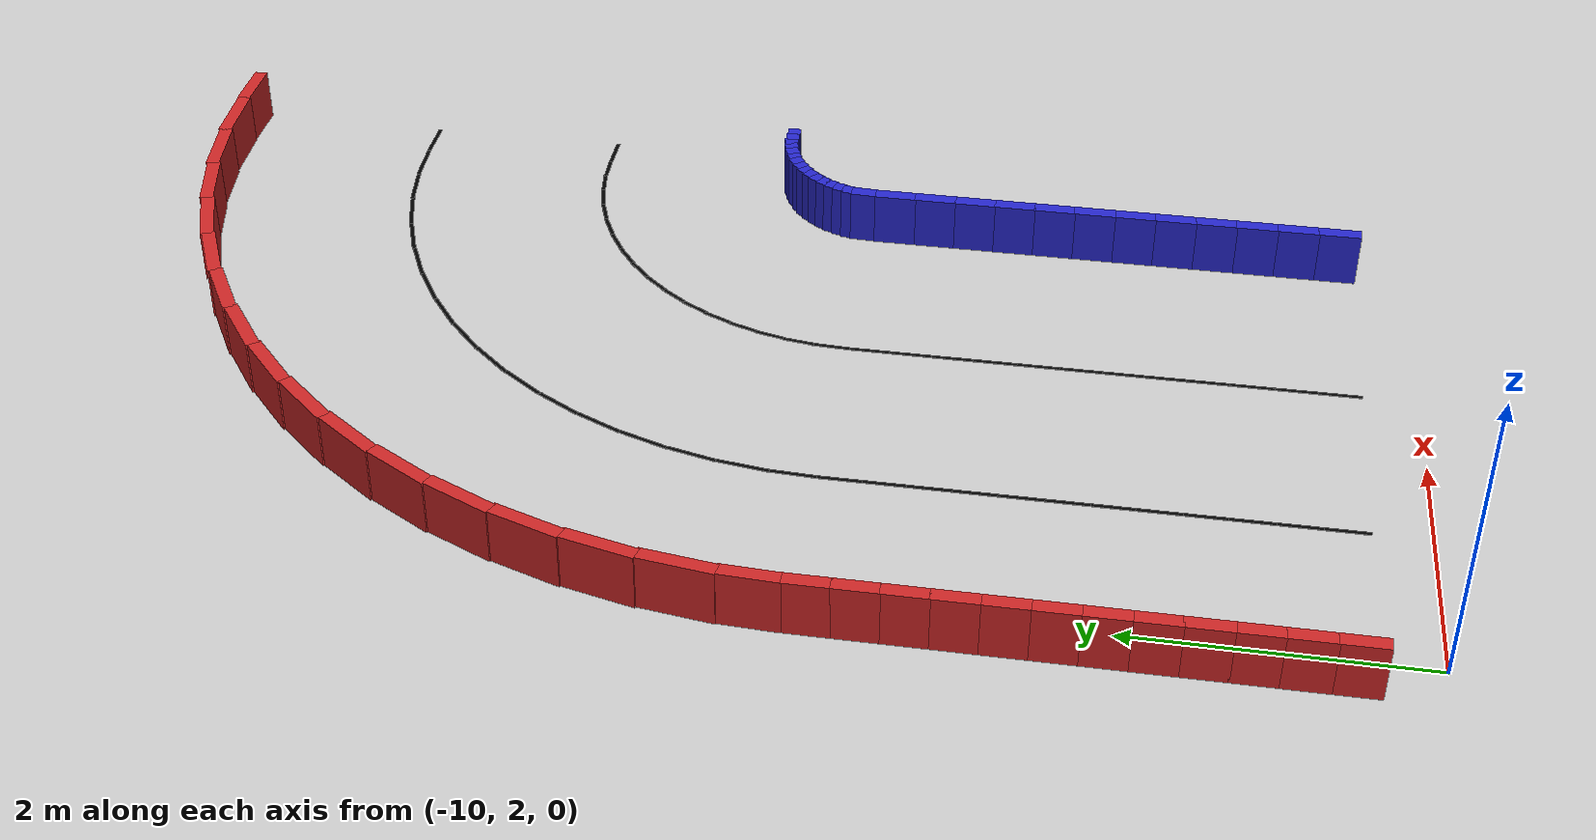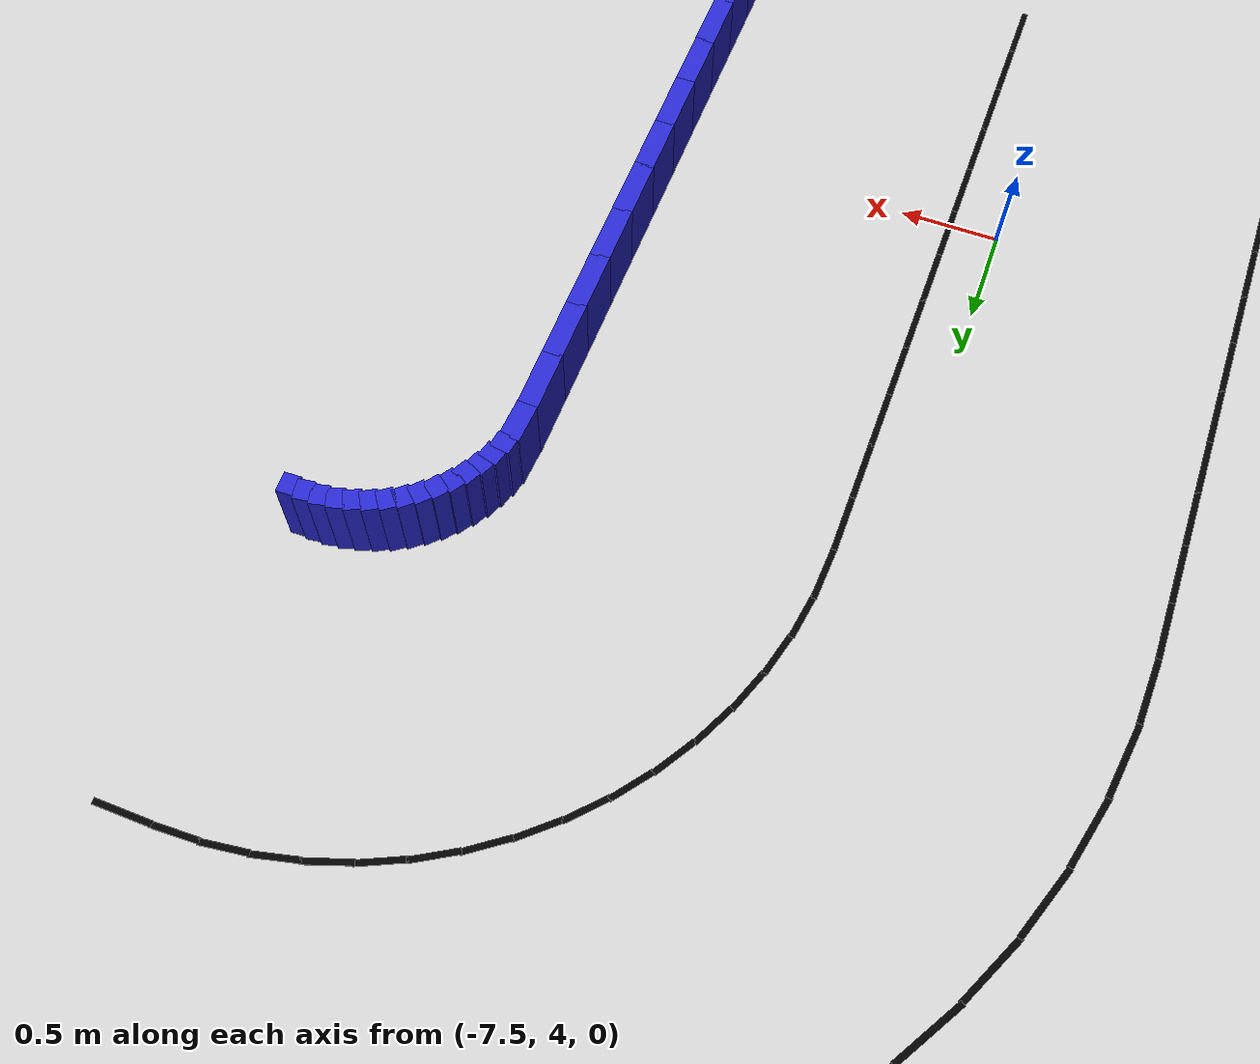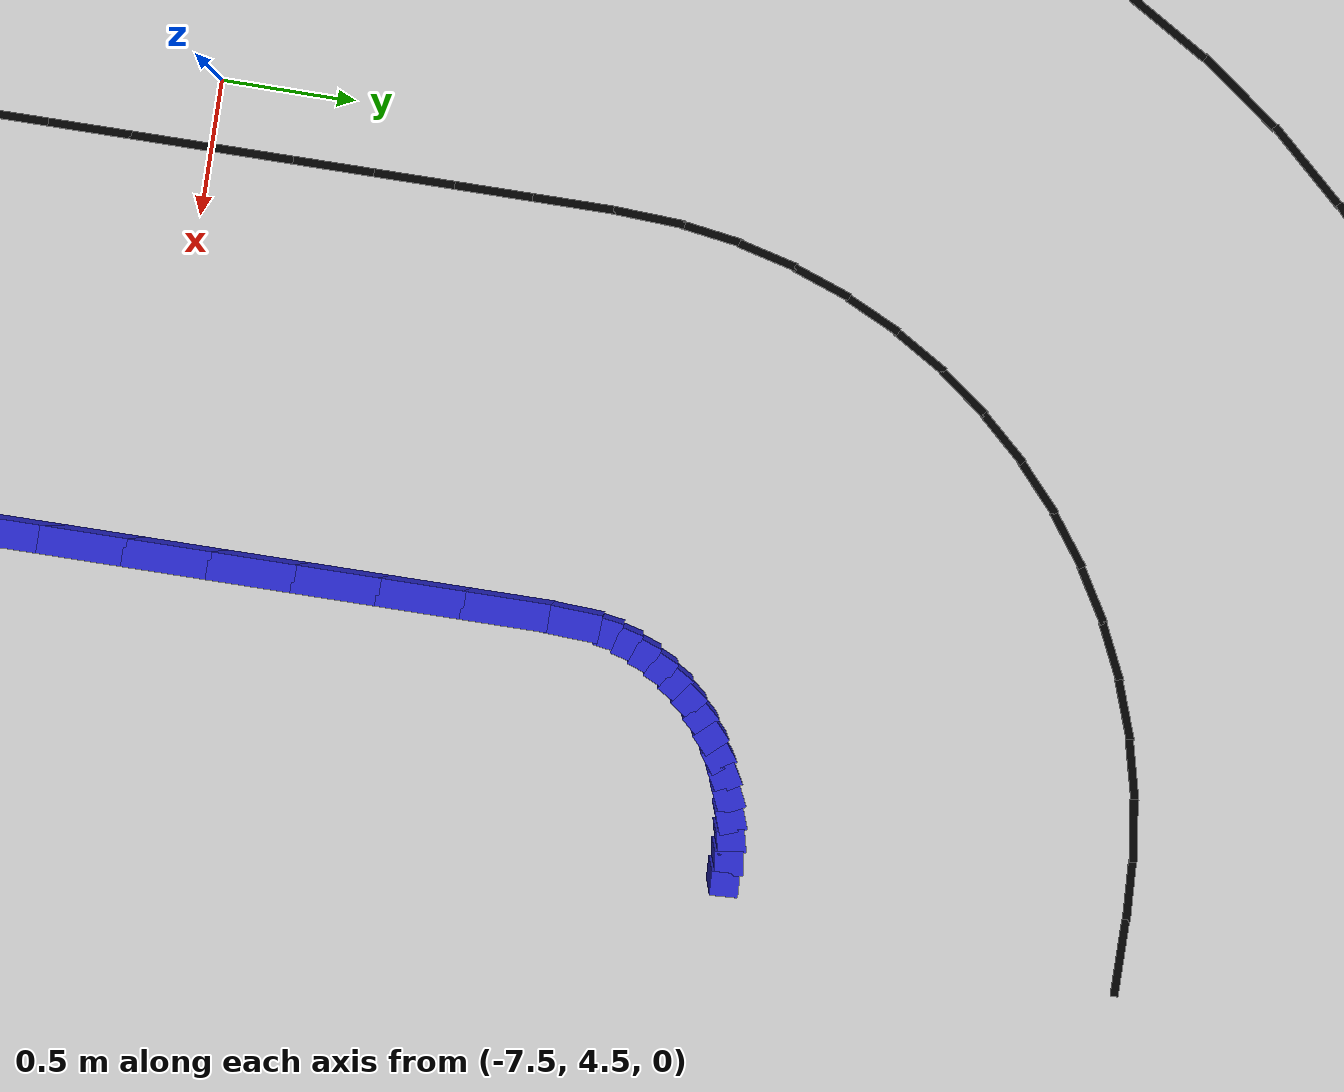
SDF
<sdf version="1.6">
 <world name="3lane_track">
  <include><uri>model://ground_plane</uri></include>
  <include><uri>model://sun</uri></include>
  <model name="iw_280">
   <static>true</static>
   <pose>-4.9268 6.7563 0.200 0 0 -3.0925</pose>
   <link name="l">
    <collision name="c"><geometry><box><size>0.0847 0.1 0.4</size></box></geometry></collision>
    <visual name="v">
     <geometry><box><size>0.0847 0.1 0.4</size></box></geometry>
     <material><ambient>0.15 0.15 0.8 1</ambient><diffuse>0.15 0.15 0.8 1</diffuse></material>
    </visual>
   </link>
  </model>
  <model name="iw_281">
   <static>true</static>
   <pose>-5.0012 6.7598 0.200 0 0 -2.9943</pose>
   <link name="l">
    <collision name="c"><geometry><box><size>0.0847 0.1 0.4</size></box></geometry></collision>
    <visual name="v">
     <geometry><box><size>0.0847 0.1 0.4</size></box></geometry>
     <material><ambient>0.15 0.15 0.8 1</ambient><diffuse>0.15 0.15 0.8 1</diffuse></material>
    </visual>
   </link>
  </model>
  <model name="iw_282">
   <static>true</static>
   <pose>-5.0757 6.7561 0.200 0 0 -2.8962</pose>
   <link name="l">
    <collision name="c"><geometry><box><size>0.0847 0.1 0.4</size></box></geometry></collision>
    <visual name="v">
     <geometry><box><size>0.0847 0.1 0.4</size></box></geometry>
     <material><ambient>0.15 0.15 0.8 1</ambient><diffuse>0.15 0.15 0.8 1</diffuse></material>
    </visual>
   </link>
  </model>
  <model name="iw_283">
   <static>true</static>
   <pose>-5.1495 6.7450 0.200 0 0 -2.7980</pose>
   <link name="l">
    <collision name="c"><geometry><box><size>0.0847 0.1 0.4</size></box></geometry></collision>
    <visual name="v">
     <geometry><box><size>0.0847 0.1 0.4</size></box></geometry>
     <material><ambient>0.15 0.15 0.8 1</ambient><diffuse>0.15 0.15 0.8 1</diffuse></material>
    </visual>
   </link>
  </model>
  <model name="iw_284">
   <static>true</static>
   <pose>-5.2218 6.7268 0.200 0 0 -2.6998</pose>
   <link name="l">
    <collision name="c"><geometry><box><size>0.0847 0.1 0.4</size></box></geometry></collision>
    <visual name="v">
     <geometry><box><size>0.0847 0.1 0.4</size></box></geometry>
     <material><ambient>0.15 0.15 0.8 1</ambient><diffuse>0.15 0.15 0.8 1</diffuse></material>
    </visual>
   </link>
  </model>
  <model name="iw_285">
   <static>true</static>
   <pose>-5.2919 6.7015 0.200 0 0 -2.6016</pose>
   <link name="l">
    <collision name="c"><geometry><box><size>0.0847 0.1 0.4</size></box></geometry></collision>
    <visual name="v">
     <geometry><box><size>0.0847 0.1 0.4</size></box></geometry>
     <material><ambient>0.15 0.15 0.8 1</ambient><diffuse>0.15 0.15 0.8 1</diffuse></material>
    </visual>
   </link>
  </model>
  <model name="iw_286">
   <static>true</static>
   <pose>-5.3593 6.6695 0.200 0 0 -2.5035</pose>
   <link name="l">
    <collision name="c"><geometry><box><size>0.0847 0.1 0.4</size></box></geometry></collision>
    <visual name="v">
     <geometry><box><size>0.0847 0.1 0.4</size></box></geometry>
     <material><ambient>0.15 0.15 0.8 1</ambient><diffuse>0.15 0.15 0.8 1</diffuse></material>
    </visual>
   </link>
  </model>
  <model name="iw_287">
   <static>true</static>
   <pose>-5.4232 6.6311 0.200 0 0 -2.4053</pose>
   <link name="l">
    <collision name="c"><geometry><box><size>0.0847 0.1 0.4</size></box></geometry></collision>
    <visual name="v">
     <geometry><box><size>0.0847 0.1 0.4</size></box></geometry>
     <material><ambient>0.15 0.15 0.8 1</ambient><diffuse>0.15 0.15 0.8 1</diffuse></material>
    </visual>
   </link>
  </model>
  <model name="iw_288">
   <static>true</static>
   <pose>-5.4830 6.5866 0.200 0 0 -2.3071</pose>
   <link name="l">
    <collision name="c"><geometry><box><size>0.0847 0.1 0.4</size></box></geometry></collision>
    <visual name="v">
     <geometry><box><size>0.0847 0.1 0.4</size></box></geometry>
     <material><ambient>0.15 0.15 0.8 1</ambient><diffuse>0.15 0.15 0.8 1</diffuse></material>
    </visual>
   </link>
  </model>
  <model name="iw_289">
   <static>true</static>
   <pose>-5.5382 6.5364 0.200 0 0 -2.2089</pose>
   <link name="l">
    <collision name="c"><geometry><box><size>0.0847 0.1 0.4</size></box></geometry></collision>
    <visual name="v">
     <geometry><box><size>0.0847 0.1 0.4</size></box></geometry>
     <material><ambient>0.15 0.15 0.8 1</ambient><diffuse>0.15 0.15 0.8 1</diffuse></material>
    </visual>
   </link>
  </model>
  <model name="iw_290">
   <static>true</static>
   <pose>-5.5882 6.4811 0.200 0 0 -2.1108</pose>
   <link name="l">
    <collision name="c"><geometry><box><size>0.0847 0.1 0.4</size></box></geometry></collision>
    <visual name="v">
     <geometry><box><size>0.0847 0.1 0.4</size></box></geometry>
     <material><ambient>0.15 0.15 0.8 1</ambient><diffuse>0.15 0.15 0.8 1</diffuse></material>
    </visual>
   </link>
  </model>
  <model name="iw_291">
   <static>true</static>
   <pose>-5.6325 6.4211 0.200 0 0 -2.0126</pose>
   <link name="l">
    <collision name="c"><geometry><box><size>0.0847 0.1 0.4</size></box></geometry></collision>
    <visual name="v">
     <geometry><box><size>0.0847 0.1 0.4</size></box></geometry>
     <material><ambient>0.15 0.15 0.8 1</ambient><diffuse>0.15 0.15 0.8 1</diffuse></material>
    </visual>
   </link>
  </model>
  <model name="iw_292">
   <static>true</static>
   <pose>-5.6707 6.3571 0.200 0 0 -1.9144</pose>
   <link name="l">
    <collision name="c"><geometry><box><size>0.0847 0.1 0.4</size></box></geometry></collision>
    <visual name="v">
     <geometry><box><size>0.0847 0.1 0.4</size></box></geometry>
     <material><ambient>0.15 0.15 0.8 1</ambient><diffuse>0.15 0.15 0.8 1</diffuse></material>
    </visual>
   </link>
  </model>
  <model name="iw_293">
   <static>true</static>
   <pose>-5.7025 6.2896 0.200 0 0 -1.8162</pose>
   <link name="l">
    <collision name="c"><geometry><box><size>0.0847 0.1 0.4</size></box></geometry></collision>
    <visual name="v">
     <geometry><box><size>0.0847 0.1 0.4</size></box></geometry>
     <material><ambient>0.15 0.15 0.8 1</ambient><diffuse>0.15 0.15 0.8 1</diffuse></material>
    </visual>
   </link>
  </model>
  <model name="iw_294">
   <static>true</static>
   <pose>-5.7275 6.2194 0.200 0 0 -1.7181</pose>
   <link name="l">
    <collision name="c"><geometry><box><size>0.0847 0.1 0.4</size></box></geometry></collision>
    <visual name="v">
     <geometry><box><size>0.0847 0.1 0.4</size></box></geometry>
     <material><ambient>0.15 0.15 0.8 1</ambient><diffuse>0.15 0.15 0.8 1</diffuse></material>
    </visual>
   </link>
  </model>
  <model name="iw_295">
   <static>true</static>
   <pose>-5.7441 6.0918 0.200 0 0 -1.6199</pose>
   <link name="l">
    <collision name="c"><geometry><box><size>0.1940 0.1 0.4</size></box></geometry></collision>
    <visual name="v">
     <geometry><box><size>0.1940 0.1 0.4</size></box></geometry>
     <material><ambient>0.15 0.15 0.8 1</ambient><diffuse>0.15 0.15 0.8 1</diffuse></material>
    </visual>
   </link>
  </model>
  <model name="iw_296">
   <static>true</static>
   <pose>-5.7500 5.8500 0.200 0 0 -1.5708</pose>
   <link name="l">
    <collision name="c"><geometry><box><size>0.3100 0.1 0.4</size></box></geometry></collision>
    <visual name="v">
     <geometry><box><size>0.3100 0.1 0.4</size></box></geometry>
     <material><ambient>0.15 0.15 0.8 1</ambient><diffuse>0.15 0.15 0.8 1</diffuse></material>
    </visual>
   </link>
  </model>
  <model name="iw_297">
   <static>true</static>
   <pose>-5.7500 5.5500 0.200 0 0 -1.5708</pose>
   <link name="l">
    <collision name="c"><geometry><box><size>0.3100 0.1 0.4</size></box></geometry></collision>
    <visual name="v">
     <geometry><box><size>0.3100 0.1 0.4</size></box></geometry>
     <material><ambient>0.15 0.15 0.8 1</ambient><diffuse>0.15 0.15 0.8 1</diffuse></material>
    </visual>
   </link>
  </model>
  <model name="iw_298">
   <static>true</static>
   <pose>-5.7500 5.2500 0.200 0 0 -1.5708</pose>
   <link name="l">
    <collision name="c"><geometry><box><size>0.3100 0.1 0.4</size></box></geometry></collision>
    <visual name="v">
     <geometry><box><size>0.3100 0.1 0.4</size></box></geometry>
     <material><ambient>0.15 0.15 0.8 1</ambient><diffuse>0.15 0.15 0.8 1</diffuse></material>
    </visual>
   </link>
  </model>
  <model name="iw_299">
   <static>true</static>
   <pose>-5.7500 4.9500 0.200 0 0 -1.5708</pose>
   <link name="l">
    <collision name="c"><geometry><box><size>0.3100 0.1 0.4</size></box></geometry></collision>
    <visual name="v">
     <geometry><box><size>0.3100 0.1 0.4</size></box></geometry>
     <material><ambient>0.15 0.15 0.8 1</ambient><diffuse>0.15 0.15 0.8 1</diffuse></material>
    </visual>
   </link>
  </model>
  <model name="iw_300">
   <static>true</static>
   <pose>-5.7500 4.6500 0.200 0 0 -1.5708</pose>
   <link name="l">
    <collision name="c"><geometry><box><size>0.3100 0.1 0.4</size></box></geometry></collision>
    <visual name="v">
     <geometry><box><size>0.3100 0.1 0.4</size></box></geometry>
     <material><ambient>0.15 0.15 0.8 1</ambient><diffuse>0.15 0.15 0.8 1</diffuse></material>
    </visual>
   </link>
  </model>
  <model name="iw_301">
   <static>true</static>
   <pose>-5.7500 4.3500 0.200 0 0 -1.5708</pose>
   <link name="l">
    <collision name="c"><geometry><box><size>0.3100 0.1 0.4</size></box></geometry></collision>
    <visual name="v">
     <geometry><box><size>0.3100 0.1 0.4</size></box></geometry>
     <material><ambient>0.15 0.15 0.8 1</ambient><diffuse>0.15 0.15 0.8 1</diffuse></material>
    </visual>
   </link>
  </model>
  <model name="iw_302">
   <static>true</static>
   <pose>-5.7500 4.0500 0.200 0 0 -1.5708</pose>
   <link name="l">
    <collision name="c"><geometry><box><size>0.3100 0.1 0.4</size></box></geometry></collision>
    <visual name="v">
     <geometry><box><size>0.3100 0.1 0.4</size></box></geometry>
     <material><ambient>0.15 0.15 0.8 1</ambient><diffuse>0.15 0.15 0.8 1</diffuse></material>
    </visual>
   </link>
  </model>
  <model name="iw_303">
   <static>true</static>
   <pose>-5.7500 3.7500 0.200 0 0 -1.5708</pose>
   <link name="l">
    <collision name="c"><geometry><box><size>0.3100 0.1 0.4</size></box></geometry></collision>
    <visual name="v">
     <geometry><box><size>0.3100 0.1 0.4</size></box></geometry>
     <material><ambient>0.15 0.15 0.8 1</ambient><diffuse>0.15 0.15 0.8 1</diffuse></material>
    </visual>
   </link>
  </model>
  <model name="iw_304">
   <static>true</static>
   <pose>-5.7500 3.4500 0.200 0 0 -1.5708</pose>
   <link name="l">
    <collision name="c"><geometry><box><size>0.3100 0.1 0.4</size></box></geometry></collision>
    <visual name="v">
     <geometry><box><size>0.3100 0.1 0.4</size></box></geometry>
     <material><ambient>0.15 0.15 0.8 1</ambient><diffuse>0.15 0.15 0.8 1</diffuse></material>
    </visual>
   </link>
  </model>
  <model name="iw_305">
   <static>true</static>
   <pose>-5.7500 3.1500 0.200 0 0 -1.5708</pose>
   <link name="l">
    <collision name="c"><geometry><box><size>0.3100 0.1 0.4</size></box></geometry></collision>
    <visual name="v">
     <geometry><box><size>0.3100 0.1 0.4</size></box></geometry>
     <material><ambient>0.15 0.15 0.8 1</ambient><diffuse>0.15 0.15 0.8 1</diffuse></material>
    </visual>
   </link>
  </model>
  <model name="iw_306">
   <static>true</static>
   <pose>-5.7500 2.8500 0.200 0 0 -1.5708</pose>
   <link name="l">
    <collision name="c"><geometry><box><size>0.3100 0.1 0.4</size></box></geometry></collision>
    <visual name="v">
     <geometry><box><size>0.3100 0.1 0.4</size></box></geometry>
     <material><ambient>0.15 0.15 0.8 1</ambient><diffuse>0.15 0.15 0.8 1</diffuse></material>
    </visual>
   </link>
  </model>
  <model name="iw_307">
   <static>true</static>
   <pose>-5.7500 2.5500 0.200 0 0 -1.5708</pose>
   <link name="l">
    <collision name="c"><geometry><box><size>0.3100 0.1 0.4</size></box></geometry></collision>
    <visual name="v">
     <geometry><box><size>0.3100 0.1 0.4</size></box></geometry>
     <material><ambient>0.15 0.15 0.8 1</ambient><diffuse>0.15 0.15 0.8 1</diffuse></material>
    </visual>
   </link>
  </model>
  <model name="ow_279">
   <static>true</static>
   <pose>-4.8996 11.2486 0.200 0 0 3.1416</pose>
   <link name="l">
    <collision name="c"><geometry><box><size>0.4316 0.1 0.4</size></box></geometry></collision>
    <visual name="v">
     <geometry><box><size>0.4316 0.1 0.4</size></box></geometry>
     <material><ambient>0.8 0.15 0.15 1</ambient><diffuse>0.8 0.15 0.15 1</diffuse></material>
    </visual>
   </link>
  </model>
  <model name="ow_280">
   <static>true</static>
   <pose>-5.3673 11.2292 0.200 0 0 -3.0925</pose>
   <link name="l">
    <collision name="c"><geometry><box><size>0.5251 0.1 0.4</size></box></geometry></collision>
    <visual name="v">
     <geometry><box><size>0.5251 0.1 0.4</size></box></geometry>
     <material><ambient>0.8 0.15 0.15 1</ambient><diffuse>0.8 0.15 0.15 1</diffuse></material>
    </visual>
   </link>
  </model>
  <model name="ow_281">
   <static>true</static>
   <pose>-5.8781 11.1681 0.200 0 0 -2.9943</pose>
   <link name="l">
    <collision name="c"><geometry><box><size>0.5251 0.1 0.4</size></box></geometry></collision>
    <visual name="v">
     <geometry><box><size>0.5251 0.1 0.4</size></box></geometry>
     <material><ambient>0.8 0.15 0.15 1</ambient><diffuse>0.8 0.15 0.15 1</diffuse></material>
    </visual>
   </link>
  </model>
  <model name="ow_282">
   <static>true</static>
   <pose>-6.3804 11.0571 0.200 0 0 -2.8962</pose>
   <link name="l">
    <collision name="c"><geometry><box><size>0.5251 0.1 0.4</size></box></geometry></collision>
    <visual name="v">
     <geometry><box><size>0.5251 0.1 0.4</size></box></geometry>
     <material><ambient>0.8 0.15 0.15 1</ambient><diffuse>0.8 0.15 0.15 1</diffuse></material>
    </visual>
   </link>
  </model>
  <model name="ow_283">
   <static>true</static>
   <pose>-6.8695 10.8975 0.200 0 0 -2.7980</pose>
   <link name="l">
    <collision name="c"><geometry><box><size>0.5251 0.1 0.4</size></box></geometry></collision>
    <visual name="v">
     <geometry><box><size>0.5251 0.1 0.4</size></box></geometry>
     <material><ambient>0.8 0.15 0.15 1</ambient><diffuse>0.8 0.15 0.15 1</diffuse></material>
    </visual>
   </link>
  </model>
  <model name="ow_284">
   <static>true</static>
   <pose>-7.3405 10.6906 0.200 0 0 -2.6998</pose>
   <link name="l">
    <collision name="c"><geometry><box><size>0.5251 0.1 0.4</size></box></geometry></collision>
    <visual name="v">
     <geometry><box><size>0.5251 0.1 0.4</size></box></geometry>
     <material><ambient>0.8 0.15 0.15 1</ambient><diffuse>0.8 0.15 0.15 1</diffuse></material>
    </visual>
   </link>
  </model>
  <model name="ow_285">
   <static>true</static>
   <pose>-7.7890 10.4386 0.200 0 0 -2.6016</pose>
   <link name="l">
    <collision name="c"><geometry><box><size>0.5251 0.1 0.4</size></box></geometry></collision>
    <visual name="v">
     <geometry><box><size>0.5251 0.1 0.4</size></box></geometry>
     <material><ambient>0.8 0.15 0.15 1</ambient><diffuse>0.8 0.15 0.15 1</diffuse></material>
    </visual>
   </link>
  </model>
  <model name="ow_286">
   <static>true</static>
   <pose>-8.2106 10.1439 0.200 0 0 -2.5035</pose>
   <link name="l">
    <collision name="c"><geometry><box><size>0.5251 0.1 0.4</size></box></geometry></collision>
    <visual name="v">
     <geometry><box><size>0.5251 0.1 0.4</size></box></geometry>
     <material><ambient>0.8 0.15 0.15 1</ambient><diffuse>0.8 0.15 0.15 1</diffuse></material>
    </visual>
   </link>
  </model>
  <model name="ow_287">
   <static>true</static>
   <pose>-8.6013 9.8092 0.200 0 0 -2.4053</pose>
   <link name="l">
    <collision name="c"><geometry><box><size>0.5251 0.1 0.4</size></box></geometry></collision>
    <visual name="v">
     <geometry><box><size>0.5251 0.1 0.4</size></box></geometry>
     <material><ambient>0.8 0.15 0.15 1</ambient><diffuse>0.8 0.15 0.15 1</diffuse></material>
    </visual>
   </link>
  </model>
  <model name="ow_288">
   <static>true</static>
   <pose>-8.9574 9.4379 0.200 0 0 -2.3071</pose>
   <link name="l">
    <collision name="c"><geometry><box><size>0.5251 0.1 0.4</size></box></geometry></collision>
    <visual name="v">
     <geometry><box><size>0.5251 0.1 0.4</size></box></geometry>
     <material><ambient>0.8 0.15 0.15 1</ambient><diffuse>0.8 0.15 0.15 1</diffuse></material>
    </visual>
   </link>
  </model>
  <model name="ow_289">
   <static>true</static>
   <pose>-9.2753 9.0335 0.200 0 0 -2.2089</pose>
   <link name="l">
    <collision name="c"><geometry><box><size>0.5251 0.1 0.4</size></box></geometry></collision>
    <visual name="v">
     <geometry><box><size>0.5251 0.1 0.4</size></box></geometry>
     <material><ambient>0.8 0.15 0.15 1</ambient><diffuse>0.8 0.15 0.15 1</diffuse></material>
    </visual>
   </link>
  </model>
  <model name="ow_290">
   <static>true</static>
   <pose>-9.5520 8.5998 0.200 0 0 -2.1108</pose>
   <link name="l">
    <collision name="c"><geometry><box><size>0.5251 0.1 0.4</size></box></geometry></collision>
    <visual name="v">
     <geometry><box><size>0.5251 0.1 0.4</size></box></geometry>
     <material><ambient>0.8 0.15 0.15 1</ambient><diffuse>0.8 0.15 0.15 1</diffuse></material>
    </visual>
   </link>
  </model>
  <model name="ow_291">
   <static>true</static>
   <pose>-9.7849 8.1411 0.200 0 0 -2.0126</pose>
   <link name="l">
    <collision name="c"><geometry><box><size>0.5251 0.1 0.4</size></box></geometry></collision>
    <visual name="v">
     <geometry><box><size>0.5251 0.1 0.4</size></box></geometry>
     <material><ambient>0.8 0.15 0.15 1</ambient><diffuse>0.8 0.15 0.15 1</diffuse></material>
    </visual>
   </link>
  </model>
  <model name="ow_292">
   <static>true</static>
   <pose>-9.9718 7.6618 0.200 0 0 -1.9144</pose>
   <link name="l">
    <collision name="c"><geometry><box><size>0.5251 0.1 0.4</size></box></geometry></collision>
    <visual name="v">
     <geometry><box><size>0.5251 0.1 0.4</size></box></geometry>
     <material><ambient>0.8 0.15 0.15 1</ambient><diffuse>0.8 0.15 0.15 1</diffuse></material>
    </visual>
   </link>
  </model>
  <model name="ow_293">
   <static>true</static>
   <pose>-10.1107 7.1665 0.200 0 0 -1.8162</pose>
   <link name="l">
    <collision name="c"><geometry><box><size>0.5251 0.1 0.4</size></box></geometry></collision>
    <visual name="v">
     <geometry><box><size>0.5251 0.1 0.4</size></box></geometry>
     <material><ambient>0.8 0.15 0.15 1</ambient><diffuse>0.8 0.15 0.15 1</diffuse></material>
    </visual>
   </link>
  </model>
  <model name="ow_294">
   <static>true</static>
   <pose>-10.2004 6.6599 0.200 0 0 -1.7181</pose>
   <link name="l">
    <collision name="c"><geometry><box><size>0.5251 0.1 0.4</size></box></geometry></collision>
    <visual name="v">
     <geometry><box><size>0.5251 0.1 0.4</size></box></geometry>
     <material><ambient>0.8 0.15 0.15 1</ambient><diffuse>0.8 0.15 0.15 1</diffuse></material>
    </visual>
   </link>
  </model>
  <model name="ow_295">
   <static>true</static>
   <pose>-10.2414 6.2022 0.200 0 0 -1.6199</pose>
   <link name="l">
    <collision name="c"><geometry><box><size>0.4148 0.1 0.4</size></box></geometry></collision>
    <visual name="v">
     <geometry><box><size>0.4148 0.1 0.4</size></box></geometry>
     <material><ambient>0.8 0.15 0.15 1</ambient><diffuse>0.8 0.15 0.15 1</diffuse></material>
    </visual>
   </link>
  </model>
  <model name="ow_296">
   <static>true</static>
   <pose>-10.2500 5.8500 0.200 0 0 -1.5708</pose>
   <link name="l">
    <collision name="c"><geometry><box><size>0.3100 0.1 0.4</size></box></geometry></collision>
    <visual name="v">
     <geometry><box><size>0.3100 0.1 0.4</size></box></geometry>
     <material><ambient>0.8 0.15 0.15 1</ambient><diffuse>0.8 0.15 0.15 1</diffuse></material>
    </visual>
   </link>
  </model>
  <model name="ow_297">
   <static>true</static>
   <pose>-10.2500 5.5500 0.200 0 0 -1.5708</pose>
   <link name="l">
    <collision name="c"><geometry><box><size>0.3100 0.1 0.4</size></box></geometry></collision>
    <visual name="v">
     <geometry><box><size>0.3100 0.1 0.4</size></box></geometry>
     <material><ambient>0.8 0.15 0.15 1</ambient><diffuse>0.8 0.15 0.15 1</diffuse></material>
    </visual>
   </link>
  </model>
  <model name="ow_298">
   <static>true</static>
   <pose>-10.2500 5.2500 0.200 0 0 -1.5708</pose>
   <link name="l">
    <collision name="c"><geometry><box><size>0.3100 0.1 0.4</size></box></geometry></collision>
    <visual name="v">
     <geometry><box><size>0.3100 0.1 0.4</size></box></geometry>
     <material><ambient>0.8 0.15 0.15 1</ambient><diffuse>0.8 0.15 0.15 1</diffuse></material>
    </visual>
   </link>
  </model>
  <model name="ow_299">
   <static>true</static>
   <pose>-10.2500 4.9500 0.200 0 0 -1.5708</pose>
   <link name="l">
    <collision name="c"><geometry><box><size>0.3100 0.1 0.4</size></box></geometry></collision>
    <visual name="v">
     <geometry><box><size>0.3100 0.1 0.4</size></box></geometry>
     <material><ambient>0.8 0.15 0.15 1</ambient><diffuse>0.8 0.15 0.15 1</diffuse></material>
    </visual>
   </link>
  </model>
  <model name="ow_300">
   <static>true</static>
   <pose>-10.2500 4.6500 0.200 0 0 -1.5708</pose>
   <link name="l">
    <collision name="c"><geometry><box><size>0.3100 0.1 0.4</size></box></geometry></collision>
    <visual name="v">
     <geometry><box><size>0.3100 0.1 0.4</size></box></geometry>
     <material><ambient>0.8 0.15 0.15 1</ambient><diffuse>0.8 0.15 0.15 1</diffuse></material>
    </visual>
   </link>
  </model>
  <model name="ow_301">
   <static>true</static>
   <pose>-10.2500 4.3500 0.200 0 0 -1.5708</pose>
   <link name="l">
    <collision name="c"><geometry><box><size>0.3100 0.1 0.4</size></box></geometry></collision>
    <visual name="v">
     <geometry><box><size>0.3100 0.1 0.4</size></box></geometry>
     <material><ambient>0.8 0.15 0.15 1</ambient><diffuse>0.8 0.15 0.15 1</diffuse></material>
    </visual>
   </link>
  </model>
  <model name="ow_302">
   <static>true</static>
   <pose>-10.2500 4.0500 0.200 0 0 -1.5708</pose>
   <link name="l">
    <collision name="c"><geometry><box><size>0.3100 0.1 0.4</size></box></geometry></collision>
    <visual name="v">
     <geometry><box><size>0.3100 0.1 0.4</size></box></geometry>
     <material><ambient>0.8 0.15 0.15 1</ambient><diffuse>0.8 0.15 0.15 1</diffuse></material>
    </visual>
   </link>
  </model>
  <model name="ow_303">
   <static>true</static>
   <pose>-10.2500 3.7500 0.200 0 0 -1.5708</pose>
   <link name="l">
    <collision name="c"><geometry><box><size>0.3100 0.1 0.4</size></box></geometry></collision>
    <visual name="v">
     <geometry><box><size>0.3100 0.1 0.4</size></box></geometry>
     <material><ambient>0.8 0.15 0.15 1</ambient><diffuse>0.8 0.15 0.15 1</diffuse></material>
    </visual>
   </link>
  </model>
  <model name="ow_304">
   <static>true</static>
   <pose>-10.2500 3.4500 0.200 0 0 -1.5708</pose>
   <link name="l">
    <collision name="c"><geometry><box><size>0.3100 0.1 0.4</size></box></geometry></collision>
    <visual name="v">
     <geometry><box><size>0.3100 0.1 0.4</size></box></geometry>
     <material><ambient>0.8 0.15 0.15 1</ambient><diffuse>0.8 0.15 0.15 1</diffuse></material>
    </visual>
   </link>
  </model>
  <model name="ow_305">
   <static>true</static>
   <pose>-10.2500 3.1500 0.200 0 0 -1.5708</pose>
   <link name="l">
    <collision name="c"><geometry><box><size>0.3100 0.1 0.4</size></box></geometry></collision>
    <visual name="v">
     <geometry><box><size>0.3100 0.1 0.4</size></box></geometry>
     <material><ambient>0.8 0.15 0.15 1</ambient><diffuse>0.8 0.15 0.15 1</diffuse></material>
    </visual>
   </link>
  </model>
  <model name="ow_306">
   <static>true</static>
   <pose>-10.2500 2.8500 0.200 0 0 -1.5708</pose>
   <link name="l">
    <collision name="c"><geometry><box><size>0.3100 0.1 0.4</size></box></geometry></collision>
    <visual name="v">
     <geometry><box><size>0.3100 0.1 0.4</size></box></geometry>
     <material><ambient>0.8 0.15 0.15 1</ambient><diffuse>0.8 0.15 0.15 1</diffuse></material>
    </visual>
   </link>
  </model>
  <model name="ow_307">
   <static>true</static>
   <pose>-10.2500 2.5500 0.200 0 0 -1.5708</pose>
   <link name="l">
    <collision name="c"><geometry><box><size>0.3100 0.1 0.4</size></box></geometry></collision>
    <visual name="v">
     <geometry><box><size>0.3100 0.1 0.4</size></box></geometry>
     <material><ambient>0.8 0.15 0.15 1</ambient><diffuse>0.8 0.15 0.15 1</diffuse></material>
    </visual>
   </link>
  </model>
  <model name="line_558">
   <static>true</static>
   <pose>-4.8260 8.2505 0.002 0 0 3.1416</pose>
   <link name="l">
    <visual name="v">
     <geometry><box><size>0.2844 0.03 0.002</size></box></geometry>
     <material><ambient>0 0 0 1</ambient><diffuse>0 0 0 1</diffuse></material>
    </visual>
   </link>
  </model>
  <model name="line_559">
   <static>true</static>
   <pose>-4.8628 9.7495 0.002 0 0 3.1416</pose>
   <link name="l">
    <visual name="v">
     <geometry><box><size>0.3580 0.03 0.002</size></box></geometry>
     <material><ambient>0 0 0 1</ambient><diffuse>0 0 0 1</diffuse></material>
    </visual>
   </link>
  </model>
  <model name="line_560">
   <static>true</static>
   <pose>-5.0736 8.2473 0.002 0 0 -3.0925</pose>
   <link name="l">
    <visual name="v">
     <geometry><box><size>0.2309 0.03 0.002</size></box></geometry>
     <material><ambient>0 0 0 1</ambient><diffuse>0 0 0 1</diffuse></material>
    </visual>
   </link>
  </model>
  <model name="line_561">
   <static>true</static>
   <pose>-5.2205 9.7383 0.002 0 0 -3.0925</pose>
   <link name="l">
    <visual name="v">
     <geometry><box><size>0.3779 0.03 0.002</size></box></geometry>
     <material><ambient>0 0 0 1</ambient><diffuse>0 0 0 1</diffuse></material>
    </visual>
   </link>
  </model>
  <model name="line_562">
   <static>true</static>
   <pose>-5.2935 8.2293 0.002 0 0 -2.9943</pose>
   <link name="l">
    <visual name="v">
     <geometry><box><size>0.2309 0.03 0.002</size></box></geometry>
     <material><ambient>0 0 0 1</ambient><diffuse>0 0 0 1</diffuse></material>
    </visual>
   </link>
  </model>
  <model name="line_563">
   <static>true</static>
   <pose>-5.5858 9.6987 0.002 0 0 -2.9943</pose>
   <link name="l">
    <visual name="v">
     <geometry><box><size>0.3779 0.03 0.002</size></box></geometry>
     <material><ambient>0 0 0 1</ambient><diffuse>0 0 0 1</diffuse></material>
    </visual>
   </link>
  </model>
  <model name="line_564">
   <static>true</static>
   <pose>-5.5106 8.1897 0.002 0 0 -2.8962</pose>
   <link name="l">
    <visual name="v">
     <geometry><box><size>0.2309 0.03 0.002</size></box></geometry>
     <material><ambient>0 0 0 1</ambient><diffuse>0 0 0 1</diffuse></material>
    </visual>
   </link>
  </model>
  <model name="line_565">
   <static>true</static>
   <pose>-5.9455 9.6234 0.002 0 0 -2.8962</pose>
   <link name="l">
    <visual name="v">
     <geometry><box><size>0.3779 0.03 0.002</size></box></geometry>
     <material><ambient>0 0 0 1</ambient><diffuse>0 0 0 1</diffuse></material>
    </visual>
   </link>
  </model>
  <model name="line_566">
   <static>true</static>
   <pose>-5.7228 8.1292 0.002 0 0 -2.7980</pose>
   <link name="l">
    <visual name="v">
     <geometry><box><size>0.2309 0.03 0.002</size></box></geometry>
     <material><ambient>0 0 0 1</ambient><diffuse>0 0 0 1</diffuse></material>
    </visual>
   </link>
  </model>
  <model name="line_567">
   <static>true</static>
   <pose>-6.2961 9.5133 0.002 0 0 -2.7980</pose>
   <link name="l">
    <visual name="v">
     <geometry><box><size>0.3779 0.03 0.002</size></box></geometry>
     <material><ambient>0 0 0 1</ambient><diffuse>0 0 0 1</diffuse></material>
    </visual>
   </link>
  </model>
  <model name="line_568">
   <static>true</static>
   <pose>-5.9280 8.0481 0.002 0 0 -2.6998</pose>
   <link name="l">
    <visual name="v">
     <geometry><box><size>0.2309 0.03 0.002</size></box></geometry>
     <material><ambient>0 0 0 1</ambient><diffuse>0 0 0 1</diffuse></material>
    </visual>
   </link>
  </model>
  <model name="line_569">
   <static>true</static>
   <pose>-6.6342 9.3693 0.002 0 0 -2.6998</pose>
   <link name="l">
    <visual name="v">
     <geometry><box><size>0.3779 0.03 0.002</size></box></geometry>
     <material><ambient>0 0 0 1</ambient><diffuse>0 0 0 1</diffuse></material>
    </visual>
   </link>
  </model>
  <model name="line_570">
   <static>true</static>
   <pose>-6.1243 7.9472 0.002 0 0 -2.6016</pose>
   <link name="l">
    <visual name="v">
     <geometry><box><size>0.2309 0.03 0.002</size></box></geometry>
     <material><ambient>0 0 0 1</ambient><diffuse>0 0 0 1</diffuse></material>
    </visual>
   </link>
  </model>
  <model name="line_571">
   <static>true</static>
   <pose>-6.9566 9.1929 0.002 0 0 -2.6016</pose>
   <link name="l">
    <visual name="v">
     <geometry><box><size>0.3779 0.03 0.002</size></box></geometry>
     <material><ambient>0 0 0 1</ambient><diffuse>0 0 0 1</diffuse></material>
    </visual>
   </link>
  </model>
  <model name="line_572">
   <static>true</static>
   <pose>-6.3097 7.8277 0.002 0 0 -2.5035</pose>
   <link name="l">
    <visual name="v">
     <geometry><box><size>0.2309 0.03 0.002</size></box></geometry>
     <material><ambient>0 0 0 1</ambient><diffuse>0 0 0 1</diffuse></material>
    </visual>
   </link>
  </model>
  <model name="line_573">
   <static>true</static>
   <pose>-7.2602 8.9858 0.002 0 0 -2.5035</pose>
   <link name="l">
    <visual name="v">
     <geometry><box><size>0.3779 0.03 0.002</size></box></geometry>
     <material><ambient>0 0 0 1</ambient><diffuse>0 0 0 1</diffuse></material>
    </visual>
   </link>
  </model>
  <model name="line_574">
   <static>true</static>
   <pose>-6.4826 7.6905 0.002 0 0 -2.4053</pose>
   <link name="l">
    <visual name="v">
     <geometry><box><size>0.2309 0.03 0.002</size></box></geometry>
     <material><ambient>0 0 0 1</ambient><diffuse>0 0 0 1</diffuse></material>
    </visual>
   </link>
  </model>
  <model name="line_575">
   <static>true</static>
   <pose>-7.5419 8.7499 0.002 0 0 -2.4053</pose>
   <link name="l">
    <visual name="v">
     <geometry><box><size>0.3779 0.03 0.002</size></box></geometry>
     <material><ambient>0 0 0 1</ambient><diffuse>0 0 0 1</diffuse></material>
    </visual>
   </link>
  </model>
  <model name="line_576">
   <static>true</static>
   <pose>-6.6411 7.5370 0.002 0 0 -2.3071</pose>
   <link name="l">
    <visual name="v">
     <geometry><box><size>0.2309 0.03 0.002</size></box></geometry>
     <material><ambient>0 0 0 1</ambient><diffuse>0 0 0 1</diffuse></material>
    </visual>
   </link>
  </model>
  <model name="line_577">
   <static>true</static>
   <pose>-7.7992 8.4875 0.002 0 0 -2.3071</pose>
   <link name="l">
    <visual name="v">
     <geometry><box><size>0.3779 0.03 0.002</size></box></geometry>
     <material><ambient>0 0 0 1</ambient><diffuse>0 0 0 1</diffuse></material>
    </visual>
   </link>
  </model>
  <model name="line_578">
   <static>true</static>
   <pose>-6.7839 7.3688 0.002 0 0 -2.2089</pose>
   <link name="l">
    <visual name="v">
     <geometry><box><size>0.2309 0.03 0.002</size></box></geometry>
     <material><ambient>0 0 0 1</ambient><diffuse>0 0 0 1</diffuse></material>
    </visual>
   </link>
  </model>
  <model name="line_579">
   <static>true</static>
   <pose>-8.0296 8.2011 0.002 0 0 -2.2089</pose>
   <link name="l">
    <visual name="v">
     <geometry><box><size>0.3779 0.03 0.002</size></box></geometry>
     <material><ambient>0 0 0 1</ambient><diffuse>0 0 0 1</diffuse></material>
    </visual>
   </link>
  </model>
  <model name="line_580">
   <static>true</static>
   <pose>-6.9094 7.1873 0.002 0 0 -2.1108</pose>
   <link name="l">
    <visual name="v">
     <geometry><box><size>0.2309 0.03 0.002</size></box></geometry>
     <material><ambient>0 0 0 1</ambient><diffuse>0 0 0 1</diffuse></material>
    </visual>
   </link>
  </model>
  <model name="line_581">
   <static>true</static>
   <pose>-8.2307 7.8936 0.002 0 0 -2.1108</pose>
   <link name="l">
    <visual name="v">
     <geometry><box><size>0.3779 0.03 0.002</size></box></geometry>
     <material><ambient>0 0 0 1</ambient><diffuse>0 0 0 1</diffuse></material>
    </visual>
   </link>
  </model>
  <model name="line_582">
   <static>true</static>
   <pose>-7.0166 6.9945 0.002 0 0 -2.0126</pose>
   <link name="l">
    <visual name="v">
     <geometry><box><size>0.2309 0.03 0.002</size></box></geometry>
     <material><ambient>0 0 0 1</ambient><diffuse>0 0 0 1</diffuse></material>
    </visual>
   </link>
  </model>
  <model name="line_583">
   <static>true</static>
   <pose>-8.4008 7.5678 0.002 0 0 -2.0126</pose>
   <link name="l">
    <visual name="v">
     <geometry><box><size>0.3779 0.03 0.002</size></box></geometry>
     <material><ambient>0 0 0 1</ambient><diffuse>0 0 0 1</diffuse></material>
    </visual>
   </link>
  </model>
  <model name="line_584">
   <static>true</static>
   <pose>-7.1044 6.7920 0.002 0 0 -1.9144</pose>
   <link name="l">
    <visual name="v">
     <geometry><box><size>0.2309 0.03 0.002</size></box></geometry>
     <material><ambient>0 0 0 1</ambient><diffuse>0 0 0 1</diffuse></material>
    </visual>
   </link>
  </model>
  <model name="line_585">
   <static>true</static>
   <pose>-8.5381 7.2269 0.002 0 0 -1.9144</pose>
   <link name="l">
    <visual name="v">
     <geometry><box><size>0.3779 0.03 0.002</size></box></geometry>
     <material><ambient>0 0 0 1</ambient><diffuse>0 0 0 1</diffuse></material>
    </visual>
   </link>
  </model>
  <model name="line_586">
   <static>true</static>
   <pose>-7.1719 6.5819 0.002 0 0 -1.8162</pose>
   <link name="l">
    <visual name="v">
     <geometry><box><size>0.2309 0.03 0.002</size></box></geometry>
     <material><ambient>0 0 0 1</ambient><diffuse>0 0 0 1</diffuse></material>
    </visual>
   </link>
  </model>
  <model name="line_587">
   <static>true</static>
   <pose>-8.6413 6.8742 0.002 0 0 -1.8162</pose>
   <link name="l">
    <visual name="v">
     <geometry><box><size>0.3779 0.03 0.002</size></box></geometry>
     <material><ambient>0 0 0 1</ambient><diffuse>0 0 0 1</diffuse></material>
    </visual>
   </link>
  </model>
  <model name="line_588">
   <static>true</static>
   <pose>-7.2185 6.3662 0.002 0 0 -1.7181</pose>
   <link name="l">
    <visual name="v">
     <geometry><box><size>0.2309 0.03 0.002</size></box></geometry>
     <material><ambient>0 0 0 1</ambient><diffuse>0 0 0 1</diffuse></material>
    </visual>
   </link>
  </model>
  <model name="line_589">
   <static>true</static>
   <pose>-8.7094 6.5131 0.002 0 0 -1.7181</pose>
   <link name="l">
    <visual name="v">
     <geometry><box><size>0.3779 0.03 0.002</size></box></geometry>
     <material><ambient>0 0 0 1</ambient><diffuse>0 0 0 1</diffuse></material>
    </visual>
   </link>
  </model>
  <model name="line_590">
   <static>true</static>
   <pose>-7.2432 6.1286 0.002 0 0 -1.6199</pose>
   <link name="l">
    <visual name="v">
     <geometry><box><size>0.2676 0.03 0.002</size></box></geometry>
     <material><ambient>0 0 0 1</ambient><diffuse>0 0 0 1</diffuse></material>
    </visual>
   </link>
  </model>
  <model name="line_591">
   <static>true</static>
   <pose>-8.7423 6.1654 0.002 0 0 -1.6199</pose>
   <link name="l">
    <visual name="v">
     <geometry><box><size>0.3412 0.03 0.002</size></box></geometry>
     <material><ambient>0 0 0 1</ambient><diffuse>0 0 0 1</diffuse></material>
    </visual>
   </link>
  </model>
  <model name="line_592">
   <static>true</static>
   <pose>-7.2500 5.8500 0.002 0 0 -1.5708</pose>
   <link name="l">
    <visual name="v">
     <geometry><box><size>0.3100 0.03 0.002</size></box></geometry>
     <material><ambient>0 0 0 1</ambient><diffuse>0 0 0 1</diffuse></material>
    </visual>
   </link>
  </model>
  <model name="line_593">
   <static>true</static>
   <pose>-8.7500 5.8500 0.002 0 0 -1.5708</pose>
   <link name="l">
    <visual name="v">
     <geometry><box><size>0.3100 0.03 0.002</size></box></geometry>
     <material><ambient>0 0 0 1</ambient><diffuse>0 0 0 1</diffuse></material>
    </visual>
   </link>
  </model>
  <model name="line_594">
   <static>true</static>
   <pose>-7.2500 5.5500 0.002 0 0 -1.5708</pose>
   <link name="l">
    <visual name="v">
     <geometry><box><size>0.3100 0.03 0.002</size></box></geometry>
     <material><ambient>0 0 0 1</ambient><diffuse>0 0 0 1</diffuse></material>
    </visual>
   </link>
  </model>
  <model name="line_595">
   <static>true</static>
   <pose>-8.7500 5.5500 0.002 0 0 -1.5708</pose>
   <link name="l">
    <visual name="v">
     <geometry><box><size>0.3100 0.03 0.002</size></box></geometry>
     <material><ambient>0 0 0 1</ambient><diffuse>0 0 0 1</diffuse></material>
    </visual>
   </link>
  </model>
  <model name="line_596">
   <static>true</static>
   <pose>-7.2500 5.2500 0.002 0 0 -1.5708</pose>
   <link name="l">
    <visual name="v">
     <geometry><box><size>0.3100 0.03 0.002</size></box></geometry>
     <material><ambient>0 0 0 1</ambient><diffuse>0 0 0 1</diffuse></material>
    </visual>
   </link>
  </model>
  <model name="line_597">
   <static>true</static>
   <pose>-8.7500 5.2500 0.002 0 0 -1.5708</pose>
   <link name="l">
    <visual name="v">
     <geometry><box><size>0.3100 0.03 0.002</size></box></geometry>
     <material><ambient>0 0 0 1</ambient><diffuse>0 0 0 1</diffuse></material>
    </visual>
   </link>
  </model>
  <model name="line_598">
   <static>true</static>
   <pose>-7.2500 4.9500 0.002 0 0 -1.5708</pose>
   <link name="l">
    <visual name="v">
     <geometry><box><size>0.3100 0.03 0.002</size></box></geometry>
     <material><ambient>0 0 0 1</ambient><diffuse>0 0 0 1</diffuse></material>
    </visual>
   </link>
  </model>
  <model name="line_599">
   <static>true</static>
   <pose>-8.7500 4.9500 0.002 0 0 -1.5708</pose>
   <link name="l">
    <visual name="v">
     <geometry><box><size>0.3100 0.03 0.002</size></box></geometry>
     <material><ambient>0 0 0 1</ambient><diffuse>0 0 0 1</diffuse></material>
    </visual>
   </link>
  </model>
  <model name="line_600">
   <static>true</static>
   <pose>-7.2500 4.6500 0.002 0 0 -1.5708</pose>
   <link name="l">
    <visual name="v">
     <geometry><box><size>0.3100 0.03 0.002</size></box></geometry>
     <material><ambient>0 0 0 1</ambient><diffuse>0 0 0 1</diffuse></material>
    </visual>
   </link>
  </model>
  <model name="line_601">
   <static>true</static>
   <pose>-8.7500 4.6500 0.002 0 0 -1.5708</pose>
   <link name="l">
    <visual name="v">
     <geometry><box><size>0.3100 0.03 0.002</size></box></geometry>
     <material><ambient>0 0 0 1</ambient><diffuse>0 0 0 1</diffuse></material>
    </visual>
   </link>
  </model>
  <model name="line_602">
   <static>true</static>
   <pose>-7.2500 4.3500 0.002 0 0 -1.5708</pose>
   <link name="l">
    <visual name="v">
     <geometry><box><size>0.3100 0.03 0.002</size></box></geometry>
     <material><ambient>0 0 0 1</ambient><diffuse>0 0 0 1</diffuse></material>
    </visual>
   </link>
  </model>
  <model name="line_603">
   <static>true</static>
   <pose>-8.7500 4.3500 0.002 0 0 -1.5708</pose>
   <link name="l">
    <visual name="v">
     <geometry><box><size>0.3100 0.03 0.002</size></box></geometry>
     <material><ambient>0 0 0 1</ambient><diffuse>0 0 0 1</diffuse></material>
    </visual>
   </link>
  </model>
  <model name="line_604">
   <static>true</static>
   <pose>-7.2500 4.0500 0.002 0 0 -1.5708</pose>
   <link name="l">
    <visual name="v">
     <geometry><box><size>0.3100 0.03 0.002</size></box></geometry>
     <material><ambient>0 0 0 1</ambient><diffuse>0 0 0 1</diffuse></material>
    </visual>
   </link>
  </model>
  <model name="line_605">
   <static>true</static>
   <pose>-8.7500 4.0500 0.002 0 0 -1.5708</pose>
   <link name="l">
    <visual name="v">
     <geometry><box><size>0.3100 0.03 0.002</size></box></geometry>
     <material><ambient>0 0 0 1</ambient><diffuse>0 0 0 1</diffuse></material>
    </visual>
   </link>
  </model>
  <model name="line_606">
   <static>true</static>
   <pose>-7.2500 3.7500 0.002 0 0 -1.5708</pose>
   <link name="l">
    <visual name="v">
     <geometry><box><size>0.3100 0.03 0.002</size></box></geometry>
     <material><ambient>0 0 0 1</ambient><diffuse>0 0 0 1</diffuse></material>
    </visual>
   </link>
  </model>
  <model name="line_607">
   <static>true</static>
   <pose>-8.7500 3.7500 0.002 0 0 -1.5708</pose>
   <link name="l">
    <visual name="v">
     <geometry><box><size>0.3100 0.03 0.002</size></box></geometry>
     <material><ambient>0 0 0 1</ambient><diffuse>0 0 0 1</diffuse></material>
    </visual>
   </link>
  </model>
  <model name="line_608">
   <static>true</static>
   <pose>-7.2500 3.4500 0.002 0 0 -1.5708</pose>
   <link name="l">
    <visual name="v">
     <geometry><box><size>0.3100 0.03 0.002</size></box></geometry>
     <material><ambient>0 0 0 1</ambient><diffuse>0 0 0 1</diffuse></material>
    </visual>
   </link>
  </model>
  <model name="line_609">
   <static>true</static>
   <pose>-8.7500 3.4500 0.002 0 0 -1.5708</pose>
   <link name="l">
    <visual name="v">
     <geometry><box><size>0.3100 0.03 0.002</size></box></geometry>
     <material><ambient>0 0 0 1</ambient><diffuse>0 0 0 1</diffuse></material>
    </visual>
   </link>
  </model>
  <model name="line_610">
   <static>true</static>
   <pose>-7.2500 3.1500 0.002 0 0 -1.5708</pose>
   <link name="l">
    <visual name="v">
     <geometry><box><size>0.3100 0.03 0.002</size></box></geometry>
     <material><ambient>0 0 0 1</ambient><diffuse>0 0 0 1</diffuse></material>
    </visual>
   </link>
  </model>
  <model name="line_611">
   <static>true</static>
   <pose>-8.7500 3.1500 0.002 0 0 -1.5708</pose>
   <link name="l">
    <visual name="v">
     <geometry><box><size>0.3100 0.03 0.002</size></box></geometry>
     <material><ambient>0 0 0 1</ambient><diffuse>0 0 0 1</diffuse></material>
    </visual>
   </link>
  </model>
  <model name="line_612">
   <static>true</static>
   <pose>-7.2500 2.8500 0.002 0 0 -1.5708</pose>
   <link name="l">
    <visual name="v">
     <geometry><box><size>0.3100 0.03 0.002</size></box></geometry>
     <material><ambient>0 0 0 1</ambient><diffuse>0 0 0 1</diffuse></material>
    </visual>
   </link>
  </model>
  <model name="line_613">
   <static>true</static>
   <pose>-8.7500 2.8500 0.002 0 0 -1.5708</pose>
   <link name="l">
    <visual name="v">
     <geometry><box><size>0.3100 0.03 0.002</size></box></geometry>
     <material><ambient>0 0 0 1</ambient><diffuse>0 0 0 1</diffuse></material>
    </visual>
   </link>
  </model>
  <model name="line_614">
   <static>true</static>
   <pose>-7.2500 2.5500 0.002 0 0 -1.5708</pose>
   <link name="l">
    <visual name="v">
     <geometry><box><size>0.3100 0.03 0.002</size></box></geometry>
     <material><ambient>0 0 0 1</ambient><diffuse>0 0 0 1</diffuse></material>
    </visual>
   </link>
  </model>
  <model name="line_615">
   <static>true</static>
   <pose>-8.7500 2.5500 0.002 0 0 -1.5708</pose>
   <link name="l">
    <visual name="v">
     <geometry><box><size>0.3100 0.03 0.002</size></box></geometry>
     <material><ambient>0 0 0 1</ambient><diffuse>0 0 0 1</diffuse></material>
    </visual>
   </link>
  </model>
 </world>
</sdf>
